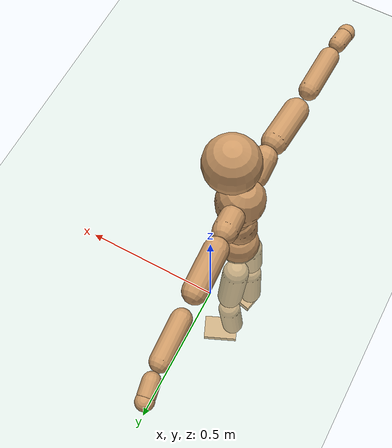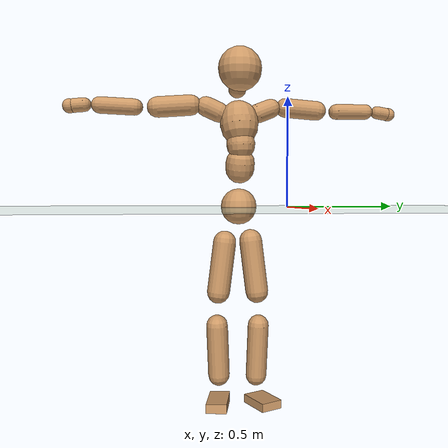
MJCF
<mujoco model="humanoid">
  <compiler coordinate="local" angle="radian"/>
  <default>
    <joint damping="0.0" armature="0.01" stiffness="0.0" limited="true"/>
    <geom conaffinity="1" condim="3" contype="7" margin="0.001" rgba="0.8 0.6 .4 1"/>
  </default>
  <asset>
    <texture type="skybox" builtin="gradient" rgb1=".4 .5 .6" rgb2="0 0 0" width="100" height="100"/>
    <texture builtin="flat" height="1278" mark="cross" markrgb="1 1 1" name="texgeom" random="0.01" rgb1="0.8 0.6 0.4" rgb2="0.8 0.6 0.4" type="cube" width="127"/>
    <texture builtin="checker" height="100" name="texplane" rgb1="0 0 0" rgb2="0.8 0.8 0.8" type="2d" width="100"/>
    <material name="MatPlane" reflectance="0.5" shininess="1" specular="1" texrepeat="60 60" texture="texplane"/>
    <material name="geom" texture="texgeom" texuniform="true"/>
  </asset>
  <worldbody>
    <light cutoff="100" diffuse="1 1 1" dir="-0 0 -1.3" directional="true" exponent="1" pos="0 0 1.3" specular=".1 .1 .1"/>
    <geom conaffinity="1" condim="3" name="floor" pos="0 0 0" rgba="0.8 0.9 0.8 1" size="100 100 .2" type="plane" material="MatPlane"/>
    <body name="Pelvis" pos="0.0005 -0.2277 0.002">
      <freejoint name="Pelvis"/>
      <geom type="sphere" contype="1" conaffinity="1" density="500" size="0.0810" pos="0.0000 0.0000 0.0000" name="Pelvis"/>
      <body name="L_Hip" pos="-0.0269 0.0497 -0.0791">
        <joint name="L_Hip_x" type="hinge" pos="0 0 0" axis="1 0 0" stiffness="800" damping="80" armature="0.02" range="-180.0000 180.0000"/>
        <joint name="L_Hip_y" type="hinge" pos="0 0 0" axis="0 1 0" stiffness="800" damping="80" armature="0.02" range="-180.0000 180.0000"/>
        <joint name="L_Hip_z" type="hinge" pos="0 0 0" axis="0 0 1" stiffness="800" damping="80" armature="0.02" range="-180.0000 180.0000"/>
        <geom type="capsule" contype="1" conaffinity="1" density="500" fromto="0.0017 0.0096 -0.0791 0.0067 0.0382 -0.3163" size="0.0525" name="L_Hip"/>
        <body name="L_Knee" pos="0.0083 0.0478 -0.3954">
          <joint name="L_Knee_x" type="hinge" pos="0 0 0" axis="1 0 0" stiffness="800" damping="80" armature="0.02" range="-180.0000 180.0000"/>
          <joint name="L_Knee_y" type="hinge" pos="0 0 0" axis="0 1 0" stiffness="800" damping="80" armature="0.02" range="-180.0000 180.0000"/>
          <joint name="L_Knee_z" type="hinge" pos="0 0 0" axis="0 0 1" stiffness="800" damping="80" armature="0.02" range="-180.0000 180.0000"/>
          <geom type="capsule" contype="1" conaffinity="1" density="500" fromto="-0.0065 -0.0021 -0.0809 -0.0261 -0.0086 -0.3238" size="0.0483" name="L_Knee"/>
          <body name="L_Ankle" pos="-0.0326 -0.0107 -0.4047">
            <joint name="L_Ankle_x" type="hinge" pos="0 0 0" axis="1 0 0" stiffness="800" damping="80" armature="0.02" range="-180.0000 180.0000"/>
            <joint name="L_Ankle_y" type="hinge" pos="0 0 0" axis="0 1 0" stiffness="800" damping="80" armature="0.02" range="-180.0000 180.0000"/>
            <joint name="L_Ankle_z" type="hinge" pos="0 0 0" axis="0 0 1" stiffness="800" damping="80" armature="0.02" range="-180.0000 180.0000"/>
            <geom type="box" contype="1" conaffinity="1" density="500" pos="0.0566 0.0244 -0.0291" size="0.0773 0.0521 0.0192" quat="0.9793 0.0000 0.0000 0.2022" name="L_Ankle"/>
            <body name="L_Toe" pos="0.1132 0.0488 -0.0583">
              <joint name="L_Toe_x" type="hinge" pos="0 0 0" axis="1 0 0" stiffness="500" damping="50" armature="0.02" range="-180.0000 180.0000"/>
              <joint name="L_Toe_y" type="hinge" pos="0 0 0" axis="0 1 0" stiffness="500" damping="50" armature="0.02" range="-180.0000 180.0000"/>
              <joint name="L_Toe_z" type="hinge" pos="0 0 0" axis="0 0 1" stiffness="500" damping="50" armature="0.02" range="-180.0000 180.0000"/>
              <geom type="box" contype="1" conaffinity="1" density="500" pos="0.0000 0.0000 0.0319" size="0.001 0.0024 0.0011" quat="0.9785 0.0000 0.0000 0.2063" name="L_Toe"/>
            </body>
          </body>
        </body>
      </body>
      <body name="R_Hip" pos="-0.0247 -0.0519 -0.087">
        <joint name="R_Hip_x" type="hinge" pos="0 0 0" axis="1 0 0" stiffness="800" damping="80" armature="0.02" range="-180.0000 180.0000"/>
        <joint name="R_Hip_y" type="hinge" pos="0 0 0" axis="0 1 0" stiffness="800" damping="80" armature="0.02" range="-180.0000 180.0000"/>
        <joint name="R_Hip_z" type="hinge" pos="0 0 0" axis="0 0 1" stiffness="800" damping="80" armature="0.02" range="-180.0000 180.0000"/>
        <geom type="capsule" contype="1" conaffinity="1" density="500" fromto="-0.0005 -0.0097 -0.0772 -0.0021 -0.0388 -0.3087" size="0.052" name="R_Hip"/>
        <body name="R_Knee" pos="-0.0026 -0.0485 -0.3858">
          <joint name="R_Knee_x" type="hinge" pos="0 0 0" axis="1 0 0" stiffness="800" damping="80" armature="0.02" range="-180.0000 180.0000"/>
          <joint name="R_Knee_y" type="hinge" pos="0 0 0" axis="0 1 0" stiffness="800" damping="80" armature="0.02" range="-180.0000 180.0000"/>
          <joint name="R_Knee_z" type="hinge" pos="0 0 0" axis="0 0 1" stiffness="800" damping="80" armature="0.02" range="-180.0000 180.0000"/>
          <geom type="capsule" contype="1" conaffinity="1" density="500" fromto="-0.0060 0.0034 -0.0797 -0.0239 0.0135 -0.3188" size="0.0494" name="R_Knee"/>
          <body name="R_Ankle" pos="-0.0299 0.0169 -0.3986">
            <joint name="R_Ankle_x" type="hinge" pos="0 0 0" axis="1 0 0" stiffness="800" damping="80" armature="0.02" range="-180.0000 180.0000"/>
            <joint name="R_Ankle_y" type="hinge" pos="0 0 0" axis="0 1 0" stiffness="800" damping="80" armature="0.02" range="-180.0000 180.0000"/>
            <joint name="R_Ankle_z" type="hinge" pos="0 0 0" axis="0 0 1" stiffness="800" damping="80" armature="0.02" range="-180.0000 180.0000"/>
            <geom type="box" contype="1" conaffinity="1" density="500" pos="0.0612 -0.0132 -0.0311" size="0.0856 0.0467 0.0211" quat="0.9943 0.0000 0.0000 -0.1062" name="R_Ankle"/>
            <body name="R_Toe" pos="0.1225 -0.0265 -0.0622">
              <joint name="R_Toe_x" type="hinge" pos="0 0 0" axis="1 0 0" stiffness="500" damping="50" armature="0.02" range="-180.0000 180.0000"/>
              <joint name="R_Toe_y" type="hinge" pos="0 0 0" axis="0 1 0" stiffness="500" damping="50" armature="0.02" range="-180.0000 180.0000"/>
              <joint name="R_Toe_z" type="hinge" pos="0 0 0" axis="0 0 1" stiffness="500" damping="50" armature="0.02" range="-180.0000 180.0000"/>
              <geom type="box" contype="1" conaffinity="1" density="500" pos="0.0000 0.0000 0.0336" size="0.0009 0.0022 0.0012" quat="0.9953 0.0000 0.0000 -0.0969" name="R_Toe"/>
            </body>
          </body>
        </body>
      </body>
      <body name="Torso" pos="-0.0164 0.0039 0.1157">
        <joint name="Torso_x" type="hinge" pos="0 0 0" axis="1 0 0" stiffness="1000" damping="100" armature="0.02" range="-180.0000 180.0000"/>
        <joint name="Torso_y" type="hinge" pos="0 0 0" axis="0 1 0" stiffness="1000" damping="100" armature="0.02" range="-180.0000 180.0000"/>
        <joint name="Torso_z" type="hinge" pos="0 0 0" axis="0 0 1" stiffness="1000" damping="100" armature="0.02" range="-180.0000 180.0000"/>
        <geom type="capsule" contype="1" conaffinity="1" density="500" fromto="0.0207 0.0026 0.0822 0.0138 0.0017 0.0548" size="0.0651" name="Torso"/>
        <body name="Spine" pos="0.0344 0.0043 0.1369">
          <joint name="Spine_x" type="hinge" pos="0 0 0" axis="1 0 0" stiffness="1000" damping="100" armature="0.02" range="-180.0000 180.0000"/>
          <joint name="Spine_y" type="hinge" pos="0 0 0" axis="0 1 0" stiffness="1000" damping="100" armature="0.02" range="-180.0000 180.0000"/>
          <joint name="Spine_z" type="hinge" pos="0 0 0" axis="0 0 1" stiffness="1000" damping="100" armature="0.02" range="-180.0000 180.0000"/>
          <geom type="capsule" contype="1" conaffinity="1" density="500" fromto="0.0001 -0.0015 0.0329 0.0001 -0.0010 0.0219" size="0.0644" name="Spine"/>
          <body name="Chest" pos="0.0002 -0.0025 0.0549">
            <joint name="Chest_x" type="hinge" pos="0 0 0" axis="1 0 0" stiffness="1000" damping="100" armature="0.02" range="-180.0000 180.0000"/>
            <joint name="Chest_y" type="hinge" pos="0 0 0" axis="0 1 0" stiffness="1000" damping="100" armature="0.02" range="-180.0000 180.0000"/>
            <joint name="Chest_z" type="hinge" pos="0 0 0" axis="0 0 1" stiffness="1000" damping="100" armature="0.02" range="-180.0000 180.0000"/>
            <geom type="capsule" contype="1" conaffinity="1" density="500" fromto="-0.0131 -0.0056 0.0816 -0.0087 -0.0037 0.0544" size="0.0857" name="Chest"/>
            <body name="Neck" pos="-0.0235 -0.0139 0.1988">
              <joint name="Neck_x" type="hinge" pos="0 0 0" axis="1 0 0" stiffness="500" damping="50" armature="0.02" range="-180.0000 180.0000"/>
              <joint name="Neck_y" type="hinge" pos="0 0 0" axis="0 1 0" stiffness="500" damping="50" armature="0.02" range="-180.0000 180.0000"/>
              <joint name="Neck_z" type="hinge" pos="0 0 0" axis="0 0 1" stiffness="500" damping="50" armature="0.02" range="-180.0000 180.0000"/>
              <geom type="capsule" contype="1" conaffinity="1" density="500" fromto="0.0104 0.0016 0.0199 0.0415 0.0062 0.0795" size="0.0406" name="Neck"/>
              <body name="Head" pos="0.0519 0.0078 0.0994">
                <joint name="Head_x" type="hinge" pos="0 0 0" axis="1 0 0" stiffness="500" damping="50" armature="0.02" range="-180.0000 180.0000"/>
                <joint name="Head_y" type="hinge" pos="0 0 0" axis="0 1 0" stiffness="500" damping="50" armature="0.02" range="-180.0000 180.0000"/>
                <joint name="Head_z" type="hinge" pos="0 0 0" axis="0 0 1" stiffness="500" damping="50" armature="0.02" range="-180.0000 180.0000"/>
                <geom type="sphere" contype="1" conaffinity="1" density="500" size="0.0970" pos="0.0000 0.0000 0.0000" name="Head"/>
              </body>
            </body>
            <body name="L_Thorax" pos="-0.0202 0.0599 0.104">
              <joint name="L_Thorax_x" type="hinge" pos="0 0 0" axis="1 0 0" stiffness="500" damping="50" armature="0.02" range="-180.0000 180.0000"/>
              <joint name="L_Thorax_y" type="hinge" pos="0 0 0" axis="0 1 0" stiffness="500" damping="50" armature="0.02" range="-180.0000 180.0000"/>
              <joint name="L_Thorax_z" type="hinge" pos="0 0 0" axis="0 0 1" stiffness="500" damping="50" armature="0.02" range="-180.0000 180.0000"/>
              <geom type="capsule" contype="1" conaffinity="1" density="500" fromto="-0.0021 0.0206 0.0083 -0.0084 0.0825 0.0333" size="0.0433" name="L_Thorax"/>
              <body name="L_Shoulder" pos="-0.0105 0.1031 0.0416">
                <joint name="L_Shoulder_x" type="hinge" pos="0 0 0" axis="1 0 0" stiffness="500" damping="50" armature="0.02" range="-720.0000 720.0000"/>
                <joint name="L_Shoulder_y" type="hinge" pos="0 0 0" axis="0 1 0" stiffness="500" damping="50" armature="0.02" range="-720.0000 720.0000"/>
                <joint name="L_Shoulder_z" type="hinge" pos="0 0 0" axis="0 0 1" stiffness="500" damping="50" armature="0.02" range="-720.0000 720.0000"/>
                <geom type="capsule" contype="1" conaffinity="1" density="500" fromto="-0.0019 0.0495 -0.0029 -0.0077 0.1978 -0.0117" size="0.0435" name="L_Shoulder"/>
                <body name="L_Elbow" pos="-0.0096 0.2473 -0.0146">
                  <joint name="L_Elbow_x" type="hinge" pos="0 0 0" axis="1 0 0" stiffness="500" damping="50" armature="0.02" range="-720.0000 720.0000"/>
                  <joint name="L_Elbow_y" type="hinge" pos="0 0 0" axis="0 1 0" stiffness="500" damping="50" armature="0.02" range="-720.0000 720.0000"/>
                  <joint name="L_Elbow_z" type="hinge" pos="0 0 0" axis="0 0 1" stiffness="500" damping="50" armature="0.02" range="-720.0000 720.0000"/>
                  <geom type="capsule" contype="1" conaffinity="1" density="500" fromto="-0.0026 0.0476 0.0012 -0.0106 0.1904 0.0050" size="0.0351" name="L_Elbow"/>
                  <body name="L_Wrist" pos="-0.0132 0.238 0.0062">
                    <joint name="L_Wrist_x" type="hinge" pos="0 0 0" axis="1 0 0" stiffness="300" damping="30" armature="0.02" range="-180.0000 180.0000"/>
                    <joint name="L_Wrist_y" type="hinge" pos="0 0 0" axis="0 1 0" stiffness="300" damping="30" armature="0.02" range="-180.0000 180.0000"/>
                    <joint name="L_Wrist_z" type="hinge" pos="0 0 0" axis="0 0 1" stiffness="300" damping="30" armature="0.02" range="-180.0000 180.0000"/>
                    <geom type="capsule" contype="1" conaffinity="1" density="500" fromto="-0.0027 0.0149 -0.0018 -0.0108 0.0598 -0.0071" size="0.0293" name="L_Wrist"/>
                    <body name="L_Hand" pos="-0.0135 0.0747 -0.0089">
                      <joint name="L_Hand_x" type="hinge" pos="0 0 0" axis="1 0 0" stiffness="300" damping="30" armature="0.02" range="-180.0000 180.0000"/>
                      <joint name="L_Hand_y" type="hinge" pos="0 0 0" axis="0 1 0" stiffness="300" damping="30" armature="0.02" range="-180.0000 180.0000"/>
                      <joint name="L_Hand_z" type="hinge" pos="0 0 0" axis="0 0 1" stiffness="300" damping="30" armature="0.02" range="-180.0000 180.0000"/>
                      <geom type="sphere" contype="1" conaffinity="1" density="500" size="0.0307" pos="0.0000 0.0000 0.0000" name="L_Hand"/>
                    </body>
                  </body>
                </body>
              </body>
            </body>
            <body name="R_Thorax" pos="-0.0218 -0.0739 0.1051">
              <joint name="R_Thorax_x" type="hinge" pos="0 0 0" axis="1 0 0" stiffness="500" damping="50" armature="0.02" range="-180.0000 180.0000"/>
              <joint name="R_Thorax_y" type="hinge" pos="0 0 0" axis="0 1 0" stiffness="500" damping="50" armature="0.02" range="-180.0000 180.0000"/>
              <joint name="R_Thorax_z" type="hinge" pos="0 0 0" axis="0 0 1" stiffness="500" damping="50" armature="0.02" range="-180.0000 180.0000"/>
              <geom type="capsule" contype="1" conaffinity="1" density="500" fromto="-0.0003 -0.0194 0.0085 -0.0013 -0.0777 0.0341" size="0.0446" name="R_Thorax"/>
              <body name="R_Shoulder" pos="-0.0016 -0.0971 0.0426">
                <joint name="R_Shoulder_x" type="hinge" pos="0 0 0" axis="1 0 0" stiffness="500" damping="50" armature="0.02" range="-720.0000 720.0000"/>
                <joint name="R_Shoulder_y" type="hinge" pos="0 0 0" axis="0 1 0" stiffness="500" damping="50" armature="0.02" range="-720.0000 720.0000"/>
                <joint name="R_Shoulder_z" type="hinge" pos="0 0 0" axis="0 0 1" stiffness="500" damping="50" armature="0.02" range="-720.0000 720.0000"/>
                <geom type="capsule" contype="1" conaffinity="1" density="500" fromto="-0.0031 -0.0490 -0.0036 -0.0125 -0.1961 -0.0143" size="0.0459" name="R_Shoulder"/>
                <body name="R_Elbow" pos="-0.0156 -0.2452 -0.0179">
                  <joint name="R_Elbow_x" type="hinge" pos="0 0 0" axis="1 0 0" stiffness="500" damping="50" armature="0.02" range="-720.0000 720.0000"/>
                  <joint name="R_Elbow_y" type="hinge" pos="0 0 0" axis="0 1 0" stiffness="500" damping="50" armature="0.02" range="-720.0000 720.0000"/>
                  <joint name="R_Elbow_z" type="hinge" pos="0 0 0" axis="0 0 1" stiffness="500" damping="50" armature="0.02" range="-720.0000 720.0000"/>
                  <geom type="capsule" contype="1" conaffinity="1" density="500" fromto="-0.0018 -0.0502 0.0020 -0.0073 -0.2007 0.0080" size="0.0367" name="R_Elbow"/>
                  <body name="R_Wrist" pos="-0.0091 -0.2509 0.01">
                    <joint name="R_Wrist_x" type="hinge" pos="0 0 0" axis="1 0 0" stiffness="300" damping="30" armature="0.02" range="-180.0000 180.0000"/>
                    <joint name="R_Wrist_y" type="hinge" pos="0 0 0" axis="0 1 0" stiffness="300" damping="30" armature="0.02" range="-180.0000 180.0000"/>
                    <joint name="R_Wrist_z" type="hinge" pos="0 0 0" axis="0 0 1" stiffness="300" damping="30" armature="0.02" range="-180.0000 180.0000"/>
                    <geom type="capsule" contype="1" conaffinity="1" density="500" fromto="-0.0018 -0.0156 -0.0014 -0.0071 -0.0626 -0.0056" size="0.0305" name="R_Wrist"/>
                    <body name="R_Hand" pos="-0.0088 -0.0782 -0.0071">
                      <joint name="R_Hand_x" type="hinge" pos="0 0 0" axis="1 0 0" stiffness="300" damping="30" armature="0.02" range="-180.0000 180.0000"/>
                      <joint name="R_Hand_y" type="hinge" pos="0 0 0" axis="0 1 0" stiffness="300" damping="30" armature="0.02" range="-180.0000 180.0000"/>
                      <joint name="R_Hand_z" type="hinge" pos="0 0 0" axis="0 0 1" stiffness="300" damping="30" armature="0.02" range="-180.0000 180.0000"/>
                      <geom type="sphere" contype="1" conaffinity="1" density="500" size="0.0318" pos="0.0000 0.0000 0.0000" name="R_Hand"/>
                    </body>
                  </body>
                </body>
              </body>
            </body>
          </body>
        </body>
      </body>
    </body>
  </worldbody>
  <actuator>
    <motor name="L_Hip_x" joint="L_Hip_x" gear="500"/>
    <motor name="L_Hip_y" joint="L_Hip_y" gear="500"/>
    <motor name="L_Hip_z" joint="L_Hip_z" gear="500"/>
    <motor name="L_Knee_x" joint="L_Knee_x" gear="500"/>
    <motor name="L_Knee_y" joint="L_Knee_y" gear="500"/>
    <motor name="L_Knee_z" joint="L_Knee_z" gear="500"/>
    <motor name="L_Ankle_x" joint="L_Ankle_x" gear="500"/>
    <motor name="L_Ankle_y" joint="L_Ankle_y" gear="500"/>
    <motor name="L_Ankle_z" joint="L_Ankle_z" gear="500"/>
    <motor name="L_Toe_x" joint="L_Toe_x" gear="500"/>
    <motor name="L_Toe_y" joint="L_Toe_y" gear="500"/>
    <motor name="L_Toe_z" joint="L_Toe_z" gear="500"/>
    <motor name="R_Hip_x" joint="R_Hip_x" gear="500"/>
    <motor name="R_Hip_y" joint="R_Hip_y" gear="500"/>
    <motor name="R_Hip_z" joint="R_Hip_z" gear="500"/>
    <motor name="R_Knee_x" joint="R_Knee_x" gear="500"/>
    <motor name="R_Knee_y" joint="R_Knee_y" gear="500"/>
    <motor name="R_Knee_z" joint="R_Knee_z" gear="500"/>
    <motor name="R_Ankle_x" joint="R_Ankle_x" gear="500"/>
    <motor name="R_Ankle_y" joint="R_Ankle_y" gear="500"/>
    <motor name="R_Ankle_z" joint="R_Ankle_z" gear="500"/>
    <motor name="R_Toe_x" joint="R_Toe_x" gear="500"/>
    <motor name="R_Toe_y" joint="R_Toe_y" gear="500"/>
    <motor name="R_Toe_z" joint="R_Toe_z" gear="500"/>
    <motor name="Torso_x" joint="Torso_x" gear="500"/>
    <motor name="Torso_y" joint="Torso_y" gear="500"/>
    <motor name="Torso_z" joint="Torso_z" gear="500"/>
    <motor name="Spine_x" joint="Spine_x" gear="500"/>
    <motor name="Spine_y" joint="Spine_y" gear="500"/>
    <motor name="Spine_z" joint="Spine_z" gear="500"/>
    <motor name="Chest_x" joint="Chest_x" gear="500"/>
    <motor name="Chest_y" joint="Chest_y" gear="500"/>
    <motor name="Chest_z" joint="Chest_z" gear="500"/>
    <motor name="Neck_x" joint="Neck_x" gear="500"/>
    <motor name="Neck_y" joint="Neck_y" gear="500"/>
    <motor name="Neck_z" joint="Neck_z" gear="500"/>
    <motor name="Head_x" joint="Head_x" gear="500"/>
    <motor name="Head_y" joint="Head_y" gear="500"/>
    <motor name="Head_z" joint="Head_z" gear="500"/>
    <motor name="L_Thorax_x" joint="L_Thorax_x" gear="500"/>
    <motor name="L_Thorax_y" joint="L_Thorax_y" gear="500"/>
    <motor name="L_Thorax_z" joint="L_Thorax_z" gear="500"/>
    <motor name="L_Shoulder_x" joint="L_Shoulder_x" gear="500"/>
    <motor name="L_Shoulder_y" joint="L_Shoulder_y" gear="500"/>
    <motor name="L_Shoulder_z" joint="L_Shoulder_z" gear="500"/>
    <motor name="L_Elbow_x" joint="L_Elbow_x" gear="500"/>
    <motor name="L_Elbow_y" joint="L_Elbow_y" gear="500"/>
    <motor name="L_Elbow_z" joint="L_Elbow_z" gear="500"/>
    <motor name="L_Wrist_x" joint="L_Wrist_x" gear="500"/>
    <motor name="L_Wrist_y" joint="L_Wrist_y" gear="500"/>
    <motor name="L_Wrist_z" joint="L_Wrist_z" gear="500"/>
    <motor name="L_Hand_x" joint="L_Hand_x" gear="500"/>
    <motor name="L_Hand_y" joint="L_Hand_y" gear="500"/>
    <motor name="L_Hand_z" joint="L_Hand_z" gear="500"/>
    <motor name="R_Thorax_x" joint="R_Thorax_x" gear="500"/>
    <motor name="R_Thorax_y" joint="R_Thorax_y" gear="500"/>
    <motor name="R_Thorax_z" joint="R_Thorax_z" gear="500"/>
    <motor name="R_Shoulder_x" joint="R_Shoulder_x" gear="500"/>
    <motor name="R_Shoulder_y" joint="R_Shoulder_y" gear="500"/>
    <motor name="R_Shoulder_z" joint="R_Shoulder_z" gear="500"/>
    <motor name="R_Elbow_x" joint="R_Elbow_x" gear="500"/>
    <motor name="R_Elbow_y" joint="R_Elbow_y" gear="500"/>
    <motor name="R_Elbow_z" joint="R_Elbow_z" gear="500"/>
    <motor name="R_Wrist_x" joint="R_Wrist_x" gear="500"/>
    <motor name="R_Wrist_y" joint="R_Wrist_y" gear="500"/>
    <motor name="R_Wrist_z" joint="R_Wrist_z" gear="500"/>
    <motor name="R_Hand_x" joint="R_Hand_x" gear="500"/>
    <motor name="R_Hand_y" joint="R_Hand_y" gear="500"/>
    <motor name="R_Hand_z" joint="R_Hand_z" gear="500"/>
  </actuator>
  <contact>
    <exclude body1="Torso" body2="Chest"/>
    <exclude body1="Head" body2="Chest"/>
    <exclude body1="R_Knee" body2="R_Toe"/>
    <exclude body1="R_Knee" body2="L_Ankle"/>
    <exclude body1="R_Knee" body2="L_Toe"/>
    <exclude body1="L_Knee" body2="L_Toe"/>
    <exclude body1="L_Knee" body2="R_Ankle"/>
    <exclude body1="L_Knee" body2="R_Toe"/>
    <exclude body1="L_Shoulder" body2="Chest"/>
    <exclude body1="R_Shoulder" body2="Chest"/>
  </contact>
  <sensor/>
  <size njmax="700" nconmax="700"/>
</mujoco>
